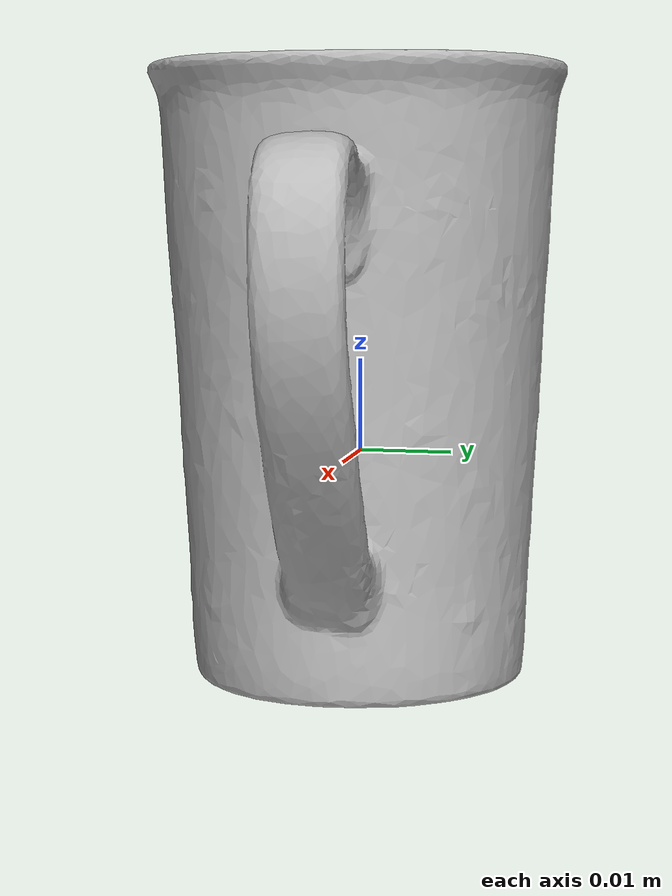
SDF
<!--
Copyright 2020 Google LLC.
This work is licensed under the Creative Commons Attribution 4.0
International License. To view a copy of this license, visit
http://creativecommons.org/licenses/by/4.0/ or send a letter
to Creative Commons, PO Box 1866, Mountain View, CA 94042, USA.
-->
<?xml version="1.0" ?>
<sdf version="1.6">
  <model name="coffee_mug">
    <link name="link_0">
      <visual name="visual">
        <geometry>
          <mesh>
            <uri>meshes/model.obj</uri>
            <scale>0.5 0.5 0.5</scale>
          </mesh>
        </geometry>
      </visual>
      <collision name="collision_0">
        <geometry>
          <mesh>
            <uri>meshes/model.obj</uri>
            <scale>0.5 0.5 0.5</scale>
          </mesh>
        </geometry>
      </collision>
    </link>
  </model>
</sdf>
